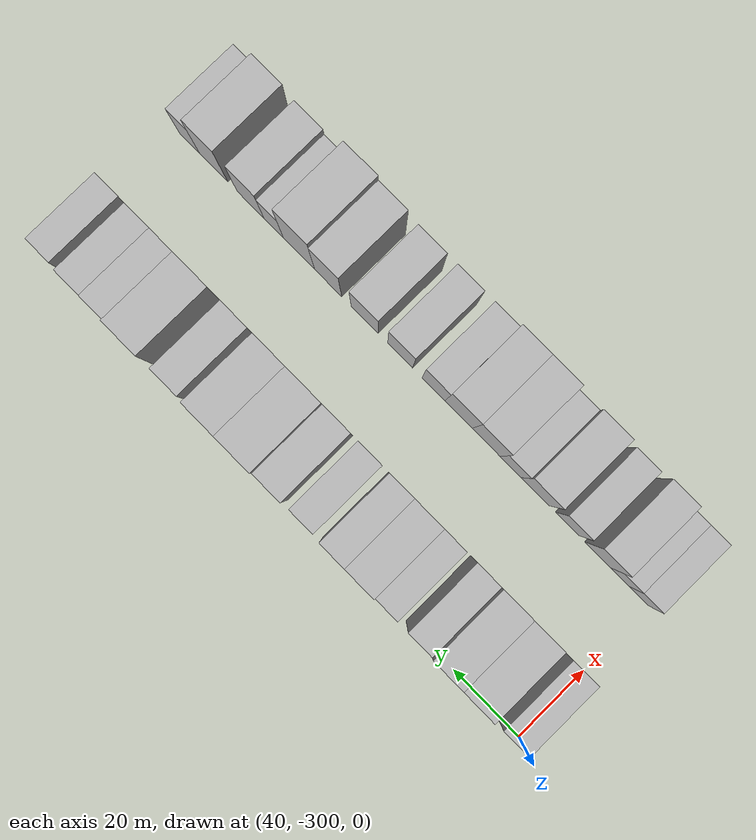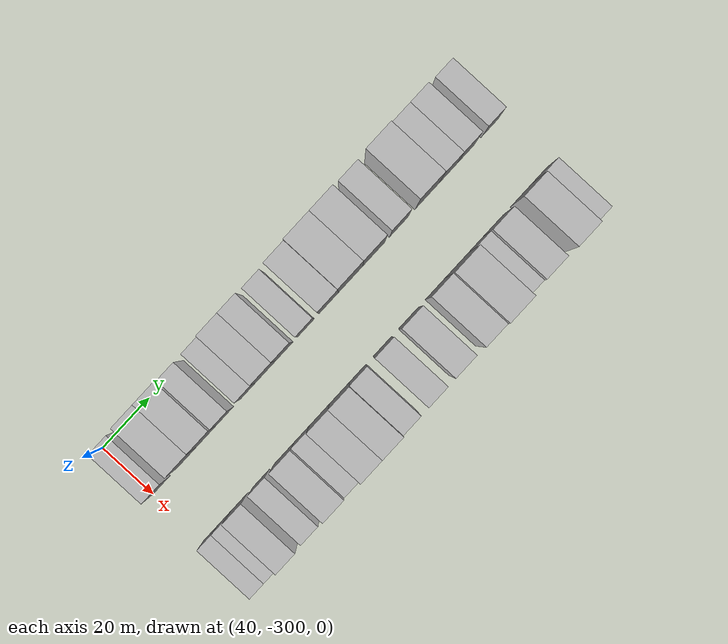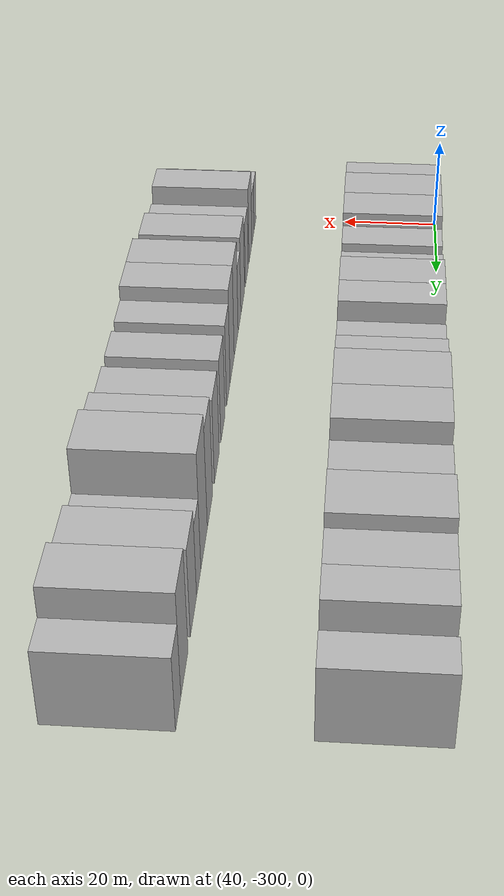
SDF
<sdf version="1.6">
 <world name="default">
  <model name="building_1">
   <static>1</static>
   <pose>50.0000 -296.3226 0 0.000000 0.000000 0.000000</pose>
   <link name="link">
    <pose>0 0 7.50 0 0 0</pose>
    <collision name="collision"><geometry><box><size>20.0000 7.3548 15.0000</size></box></geometry></collision>
    <visual name="visual">
     <cast_shadows>0</cast_shadows>
     <geometry><box><size>20.0000 7.3548 15.0000</size></box></geometry>
     <material>
      <script>
       <uri>model://HANNAS_wall/materials/scripts</uri>
       <uri>model://HANNAS_wall/materials/textures</uri>
       <name>vrc/HANNAS_wall</name>
      </script>
     </material>
    </visual>
   </link>
  </model>
  <model name="building_2">
   <static>1</static>
   <pose>50.0000 -285.2588 0 0.000000 0.000000 0.000000</pose>
   <link name="link">
    <pose>0 0 9.00 0 0 0</pose>
    <collision name="collision"><geometry><box><size>20.0000 8.7729 18.0000</size></box></geometry></collision>
    <visual name="visual">
     <cast_shadows>0</cast_shadows>
     <geometry><box><size>20.0000 8.7729 18.0000</size></box></geometry>
     <material>
      <script>
       <uri>model://HANNAS_wall/materials/scripts</uri>
       <uri>model://HANNAS_wall/materials/textures</uri>
       <name>vrc/HANNAS_wall</name>
      </script>
     </material>
    </visual>
   </link>
  </model>
  <model name="building_3">
   <static>1</static>
   <pose>50.0000 -276.5379 0 0.000000 0.000000 0.000000</pose>
   <link name="link">
    <pose>0 0 9.00 0 0 0</pose>
    <collision name="collision"><geometry><box><size>20.0000 8.6689 18.0000</size></box></geometry></collision>
    <visual name="visual">
     <cast_shadows>0</cast_shadows>
     <geometry><box><size>20.0000 8.6689 18.0000</size></box></geometry>
     <material>
      <script>
       <uri>model://HANNAS_wall/materials/scripts</uri>
       <uri>model://HANNAS_wall/materials/textures</uri>
       <name>vrc/HANNAS_wall</name>
      </script>
     </material>
    </visual>
   </link>
  </model>
  <model name="building_4">
   <static>1</static>
   <pose>50.0000 -268.7203 0 0.000000 0.000000 0.000000</pose>
   <link name="link">
    <pose>0 0 7.50 0 0 0</pose>
    <collision name="collision"><geometry><box><size>20.0000 6.9662 15.0000</size></box></geometry></collision>
    <visual name="visual">
     <cast_shadows>0</cast_shadows>
     <geometry><box><size>20.0000 6.9662 15.0000</size></box></geometry>
     <material>
      <script>
       <uri>model://HANNAS_wall/materials/scripts</uri>
       <uri>model://HANNAS_wall/materials/textures</uri>
       <name>vrc/HANNAS_wall</name>
      </script>
     </material>
    </visual>
   </link>
  </model>
  <model name="building_5">
   <static>1</static>
   <pose>50.0000 -258.8322 0 0.000000 0.000000 0.000000</pose>
   <link name="link">
    <pose>0 0 7.50 0 0 0</pose>
    <collision name="collision"><geometry><box><size>20.0000 6.8100 15.0000</size></box></geometry></collision>
    <visual name="visual">
     <cast_shadows>0</cast_shadows>
     <geometry><box><size>20.0000 6.8100 15.0000</size></box></geometry>
     <material>
      <script>
       <uri>model://HANNAS_wall/materials/scripts</uri>
       <uri>model://HANNAS_wall/materials/textures</uri>
       <name>vrc/HANNAS_wall</name>
      </script>
     </material>
    </visual>
   </link>
  </model>
  <model name="building_6">
   <static>1</static>
   <pose>50.0000 -251.1433 0 0.000000 0.000000 0.000000</pose>
   <link name="link">
    <pose>0 0 9.00 0 0 0</pose>
    <collision name="collision"><geometry><box><size>20.0000 8.5678 18.0000</size></box></geometry></collision>
    <visual name="visual">
     <cast_shadows>0</cast_shadows>
     <geometry><box><size>20.0000 8.5678 18.0000</size></box></geometry>
     <material>
      <script>
       <uri>model://HANNAS_wall/materials/scripts</uri>
       <uri>model://HANNAS_wall/materials/textures</uri>
       <name>vrc/HANNAS_wall</name>
      </script>
     </material>
    </visual>
   </link>
  </model>
  <model name="building_7">
   <static>1</static>
   <pose>50.0000 -243.2045 0 0.000000 0.000000 0.000000</pose>
   <link name="link">
    <pose>0 0 9.00 0 0 0</pose>
    <collision name="collision"><geometry><box><size>20.0000 7.3098 18.0000</size></box></geometry></collision>
    <visual name="visual">
     <cast_shadows>0</cast_shadows>
     <geometry><box><size>20.0000 7.3098 18.0000</size></box></geometry>
     <material>
      <script>
       <uri>model://HANNAS_wall/materials/scripts</uri>
       <uri>model://HANNAS_wall/materials/textures</uri>
       <name>vrc/HANNAS_wall</name>
      </script>
     </material>
    </visual>
   </link>
  </model>
  <model name="building_8">
   <static>1</static>
   <pose>50.0000 -233.9707 0 0.000000 0.000000 0.000000</pose>
   <link name="link">
    <pose>0 0 7.50 0 0 0</pose>
    <collision name="collision"><geometry><box><size>20.0000 7.1579 15.0000</size></box></geometry></collision>
    <visual name="visual">
     <cast_shadows>0</cast_shadows>
     <geometry><box><size>20.0000 7.1579 15.0000</size></box></geometry>
     <material>
      <script>
       <uri>model://HANNAS_wall/materials/scripts</uri>
       <uri>model://HANNAS_wall/materials/textures</uri>
       <name>vrc/HANNAS_wall</name>
      </script>
     </material>
    </visual>
   </link>
  </model>
  <model name="building_9">
   <static>1</static>
   <pose>50.0000 -224.2129 0 0.000000 0.000000 0.000000</pose>
   <link name="link">
    <pose>0 0 9.00 0 0 0</pose>
    <collision name="collision"><geometry><box><size>20.0000 8.3578 18.0000</size></box></geometry></collision>
    <visual name="visual">
     <cast_shadows>0</cast_shadows>
     <geometry><box><size>20.0000 8.3578 18.0000</size></box></geometry>
     <material>
      <script>
       <uri>model://HANNAS_wall/materials/scripts</uri>
       <uri>model://HANNAS_wall/materials/textures</uri>
       <name>vrc/HANNAS_wall</name>
      </script>
     </material>
    </visual>
   </link>
  </model>
  <model name="building_10">
   <static>1</static>
   <pose>50.0000 -214.8225 0 0.000000 0.000000 0.000000</pose>
   <link name="link">
    <pose>0 0 10.50 0 0 0</pose>
    <collision name="collision"><geometry><box><size>20.0000 10.4230 21.0000</size></box></geometry></collision>
    <visual name="visual">
     <cast_shadows>0</cast_shadows>
     <geometry><box><size>20.0000 10.4230 21.0000</size></box></geometry>
     <material>
      <script>
       <uri>model://HANNAS_wall/materials/scripts</uri>
       <uri>model://HANNAS_wall/materials/textures</uri>
       <name>vrc/HANNAS_wall</name>
      </script>
     </material>
    </visual>
   </link>
  </model>
  <model name="building_11">
   <static>1</static>
   <pose>50.0000 -204.8685 0 0.000000 0.000000 0.000000</pose>
   <link name="link">
    <pose>0 0 10.50 0 0 0</pose>
    <collision name="collision"><geometry><box><size>20.0000 9.4849 21.0000</size></box></geometry></collision>
    <visual name="visual">
     <cast_shadows>0</cast_shadows>
     <geometry><box><size>20.0000 9.4849 21.0000</size></box></geometry>
     <material>
      <script>
       <uri>model://HANNAS_wall/materials/scripts</uri>
       <uri>model://HANNAS_wall/materials/textures</uri>
       <name>vrc/HANNAS_wall</name>
      </script>
     </material>
    </visual>
   </link>
  </model>
  <model name="building_12">
   <static>1</static>
   <pose>50.0000 -194.1113 0 0.000000 0.000000 0.000000</pose>
   <link name="link">
    <pose>0 0 9.00 0 0 0</pose>
    <collision name="collision"><geometry><box><size>20.0000 8.0295 18.0000</size></box></geometry></collision>
    <visual name="visual">
     <cast_shadows>0</cast_shadows>
     <geometry><box><size>20.0000 8.0295 18.0000</size></box></geometry>
     <material>
      <script>
       <uri>model://HANNAS_wall/materials/scripts</uri>
       <uri>model://HANNAS_wall/materials/textures</uri>
       <name>vrc/HANNAS_wall</name>
      </script>
     </material>
    </visual>
   </link>
  </model>
  <model name="building_13">
   <static>1</static>
   <pose>50.0000 -181.9876 0 0.000000 0.000000 0.000000</pose>
   <link name="link">
    <pose>0 0 10.50 0 0 0</pose>
    <collision name="collision"><geometry><box><size>20.0000 10.2180 21.0000</size></box></geometry></collision>
    <visual name="visual">
     <cast_shadows>0</cast_shadows>
     <geometry><box><size>20.0000 10.2180 21.0000</size></box></geometry>
     <material>
      <script>
       <uri>model://HANNAS_wall/materials/scripts</uri>
       <uri>model://HANNAS_wall/materials/textures</uri>
       <name>vrc/HANNAS_wall</name>
      </script>
     </material>
    </visual>
   </link>
  </model>
  <model name="building_14">
   <static>1</static>
   <pose>50.0000 -172.9549 0 0.000000 0.000000 0.000000</pose>
   <link name="link">
    <pose>0 0 9.00 0 0 0</pose>
    <collision name="collision"><geometry><box><size>20.0000 7.8474 18.0000</size></box></geometry></collision>
    <visual name="visual">
     <cast_shadows>0</cast_shadows>
     <geometry><box><size>20.0000 7.8474 18.0000</size></box></geometry>
     <material>
      <script>
       <uri>model://HANNAS_wall/materials/scripts</uri>
       <uri>model://HANNAS_wall/materials/textures</uri>
       <name>vrc/HANNAS_wall</name>
      </script>
     </material>
    </visual>
   </link>
  </model>
  <model name="building_15">
   <static>1</static>
   <pose>50.0000 -165.3196 0 0.000000 0.000000 0.000000</pose>
   <link name="link">
    <pose>0 0 9.00 0 0 0</pose>
    <collision name="collision"><geometry><box><size>20.0000 7.4234 18.0000</size></box></geometry></collision>
    <visual name="visual">
     <cast_shadows>0</cast_shadows>
     <geometry><box><size>20.0000 7.4234 18.0000</size></box></geometry>
     <material>
      <script>
       <uri>model://HANNAS_wall/materials/scripts</uri>
       <uri>model://HANNAS_wall/materials/textures</uri>
       <name>vrc/HANNAS_wall</name>
      </script>
     </material>
    </visual>
   </link>
  </model>
  <model name="building_16">
   <static>1</static>
   <pose>50.0000 -155.0057 0 0.000000 0.000000 0.000000</pose>
   <link name="link">
    <pose>0 0 7.50 0 0 0</pose>
    <collision name="collision"><geometry><box><size>20.0000 7.2043 15.0000</size></box></geometry></collision>
    <visual name="visual">
     <cast_shadows>0</cast_shadows>
     <geometry><box><size>20.0000 7.2043 15.0000</size></box></geometry>
     <material>
      <script>
       <uri>model://HANNAS_wall/materials/scripts</uri>
       <uri>model://HANNAS_wall/materials/textures</uri>
       <name>vrc/HANNAS_wall</name>
      </script>
     </material>
    </visual>
   </link>
  </model>
  <model name="building_66">
   <static>1</static>
   <pose>90.0000 -297.0856 0 0.000000 0.000000 0.000000</pose>
   <link name="link">
    <pose>0 0 6.00 0 0 0</pose>
    <collision name="collision"><geometry><box><size>20.0000 5.8288 12.0000</size></box></geometry></collision>
    <visual name="visual">
     <cast_shadows>0</cast_shadows>
     <geometry><box><size>20.0000 5.8288 12.0000</size></box></geometry>
     <material>
      <script>
       <uri>model://HANNAS_wall/materials/scripts</uri>
       <uri>model://HANNAS_wall/materials/textures</uri>
       <name>vrc/HANNAS_wall</name>
      </script>
     </material>
    </visual>
   </link>
  </model>
  <model name="building_67">
   <static>1</static>
   <pose>90.0000 -291.3584 0 0.000000 0.000000 0.000000</pose>
   <link name="link">
    <pose>0 0 6.00 0 0 0</pose>
    <collision name="collision"><geometry><box><size>20.0000 5.6254 12.0000</size></box></geometry></collision>
    <visual name="visual">
     <cast_shadows>0</cast_shadows>
     <geometry><box><size>20.0000 5.6254 12.0000</size></box></geometry>
     <material>
      <script>
       <uri>model://HANNAS_wall/materials/scripts</uri>
       <uri>model://HANNAS_wall/materials/textures</uri>
       <name>vrc/HANNAS_wall</name>
      </script>
     </material>
    </visual>
   </link>
  </model>
  <model name="building_68">
   <static>1</static>
   <pose>90.0000 -284.6246 0 0.000000 0.000000 0.000000</pose>
   <link name="link">
    <pose>0 0 9.00 0 0 0</pose>
    <collision name="collision"><geometry><box><size>20.0000 7.8423 18.0000</size></box></geometry></collision>
    <visual name="visual">
     <cast_shadows>0</cast_shadows>
     <geometry><box><size>20.0000 7.8423 18.0000</size></box></geometry>
     <material>
      <script>
       <uri>model://HANNAS_wall/materials/scripts</uri>
       <uri>model://HANNAS_wall/materials/textures</uri>
       <name>vrc/HANNAS_wall</name>
      </script>
     </material>
    </visual>
   </link>
  </model>
  <model name="building_69">
   <static>1</static>
   <pose>90.0000 -275.1547 0 0.000000 0.000000 0.000000</pose>
   <link name="link">
    <pose>0 0 7.50 0 0 0</pose>
    <collision name="collision"><geometry><box><size>20.0000 7.0974 15.0000</size></box></geometry></collision>
    <visual name="visual">
     <cast_shadows>0</cast_shadows>
     <geometry><box><size>20.0000 7.0974 15.0000</size></box></geometry>
     <material>
      <script>
       <uri>model://HANNAS_wall/materials/scripts</uri>
       <uri>model://HANNAS_wall/materials/textures</uri>
       <name>vrc/HANNAS_wall</name>
      </script>
     </material>
    </visual>
   </link>
  </model>
  <model name="building_70">
   <static>1</static>
   <pose>90.0000 -265.2765 0 0.000000 0.000000 0.000000</pose>
   <link name="link">
    <pose>0 0 9.00 0 0 0</pose>
    <collision name="collision"><geometry><box><size>20.0000 8.6590 18.0000</size></box></geometry></collision>
    <visual name="visual">
     <cast_shadows>0</cast_shadows>
     <geometry><box><size>20.0000 8.6590 18.0000</size></box></geometry>
     <material>
      <script>
       <uri>model://HANNAS_wall/materials/scripts</uri>
       <uri>model://HANNAS_wall/materials/textures</uri>
       <name>vrc/HANNAS_wall</name>
      </script>
     </material>
    </visual>
   </link>
  </model>
  <model name="building_71">
   <static>1</static>
   <pose>90.0000 -257.6493 0 0.000000 0.000000 0.000000</pose>
   <link name="link">
    <pose>0 0 7.50 0 0 0</pose>
    <collision name="collision"><geometry><box><size>20.0000 6.5954 15.0000</size></box></geometry></collision>
    <visual name="visual">
     <cast_shadows>0</cast_shadows>
     <geometry><box><size>20.0000 6.5954 15.0000</size></box></geometry>
     <material>
      <script>
       <uri>model://HANNAS_wall/materials/scripts</uri>
       <uri>model://HANNAS_wall/materials/textures</uri>
       <name>vrc/HANNAS_wall</name>
      </script>
     </material>
    </visual>
   </link>
  </model>
  <model name="building_72">
   <static>1</static>
   <pose>90.0000 -250.0332 0 0.000000 0.000000 0.000000</pose>
   <link name="link">
    <pose>0 0 10.50 0 0 0</pose>
    <collision name="collision"><geometry><box><size>20.0000 8.6369 21.0000</size></box></geometry></collision>
    <visual name="visual">
     <cast_shadows>0</cast_shadows>
     <geometry><box><size>20.0000 8.6369 21.0000</size></box></geometry>
     <material>
      <script>
       <uri>model://HANNAS_wall/materials/scripts</uri>
       <uri>model://HANNAS_wall/materials/textures</uri>
       <name>vrc/HANNAS_wall</name>
      </script>
     </material>
    </visual>
   </link>
  </model>
  <model name="building_73">
   <static>1</static>
   <pose>90.0000 -241.4345 0 0.000000 0.000000 0.000000</pose>
   <link name="link">
    <pose>0 0 10.50 0 0 0</pose>
    <collision name="collision"><geometry><box><size>20.0000 8.5606 21.0000</size></box></geometry></collision>
    <visual name="visual">
     <cast_shadows>0</cast_shadows>
     <geometry><box><size>20.0000 8.5606 21.0000</size></box></geometry>
     <material>
      <script>
       <uri>model://HANNAS_wall/materials/scripts</uri>
       <uri>model://HANNAS_wall/materials/textures</uri>
       <name>vrc/HANNAS_wall</name>
      </script>
     </material>
    </visual>
   </link>
  </model>
  <model name="building_74">
   <static>1</static>
   <pose>90.0000 -233.5163 0 0.000000 0.000000 0.000000</pose>
   <link name="link">
    <pose>0 0 9.00 0 0 0</pose>
    <collision name="collision"><geometry><box><size>20.0000 7.2758 18.0000</size></box></geometry></collision>
    <visual name="visual">
     <cast_shadows>0</cast_shadows>
     <geometry><box><size>20.0000 7.2758 18.0000</size></box></geometry>
     <material>
      <script>
       <uri>model://HANNAS_wall/materials/scripts</uri>
       <uri>model://HANNAS_wall/materials/textures</uri>
       <name>vrc/HANNAS_wall</name>
      </script>
     </material>
    </visual>
   </link>
  </model>
  <model name="building_75">
   <static>1</static>
   <pose>90.0000 -222.9421 0 0.000000 0.000000 0.000000</pose>
   <link name="link">
    <pose>0 0 9.00 0 0 0</pose>
    <collision name="collision"><geometry><box><size>20.0000 7.8727 18.0000</size></box></geometry></collision>
    <visual name="visual">
     <cast_shadows>0</cast_shadows>
     <geometry><box><size>20.0000 7.8727 18.0000</size></box></geometry>
     <material>
      <script>
       <uri>model://HANNAS_wall/materials/scripts</uri>
       <uri>model://HANNAS_wall/materials/textures</uri>
       <name>vrc/HANNAS_wall</name>
      </script>
     </material>
    </visual>
   </link>
  </model>
  <model name="building_76">
   <static>1</static>
   <pose>90.0000 -211.7024 0 0.000000 0.000000 0.000000</pose>
   <link name="link">
    <pose>0 0 9.00 0 0 0</pose>
    <collision name="collision"><geometry><box><size>20.0000 8.6066 18.0000</size></box></geometry></collision>
    <visual name="visual">
     <cast_shadows>0</cast_shadows>
     <geometry><box><size>20.0000 8.6066 18.0000</size></box></geometry>
     <material>
      <script>
       <uri>model://HANNAS_wall/materials/scripts</uri>
       <uri>model://HANNAS_wall/materials/textures</uri>
       <name>vrc/HANNAS_wall</name>
      </script>
     </material>
    </visual>
   </link>
  </model>
  <model name="building_77">
   <static>1</static>
   <pose>90.0000 -200.0580 0 0.000000 0.000000 0.000000</pose>
   <link name="link">
    <pose>0 0 10.50 0 0 0</pose>
    <collision name="collision"><geometry><box><size>20.0000 8.6824 21.0000</size></box></geometry></collision>
    <visual name="visual">
     <cast_shadows>0</cast_shadows>
     <geometry><box><size>20.0000 8.6824 21.0000</size></box></geometry>
     <material>
      <script>
       <uri>model://HANNAS_wall/materials/scripts</uri>
       <uri>model://HANNAS_wall/materials/textures</uri>
       <name>vrc/HANNAS_wall</name>
      </script>
     </material>
    </visual>
   </link>
  </model>
  <model name="building_78">
   <static>1</static>
   <pose>90.0000 -190.6922 0 0.000000 0.000000 0.000000</pose>
   <link name="link">
    <pose>0 0 12.00 0 0 0</pose>
    <collision name="collision"><geometry><box><size>20.0000 10.0491 24.0000</size></box></geometry></collision>
    <visual name="visual">
     <cast_shadows>0</cast_shadows>
     <geometry><box><size>20.0000 10.0491 24.0000</size></box></geometry>
     <material>
      <script>
       <uri>model://HANNAS_wall/materials/scripts</uri>
       <uri>model://HANNAS_wall/materials/textures</uri>
       <name>vrc/HANNAS_wall</name>
      </script>
     </material>
    </visual>
   </link>
  </model>
  <model name="building_79">
   <static>1</static>
   <pose>90.0000 -182.5244 0 0.000000 0.000000 0.000000</pose>
   <link name="link">
    <pose>0 0 7.50 0 0 0</pose>
    <collision name="collision"><geometry><box><size>20.0000 6.2866 15.0000</size></box></geometry></collision>
    <visual name="visual">
     <cast_shadows>0</cast_shadows>
     <geometry><box><size>20.0000 6.2866 15.0000</size></box></geometry>
     <material>
      <script>
       <uri>model://HANNAS_wall/materials/scripts</uri>
       <uri>model://HANNAS_wall/materials/textures</uri>
       <name>vrc/HANNAS_wall</name>
      </script>
     </material>
    </visual>
   </link>
  </model>
  <model name="building_80">
   <static>1</static>
   <pose>90.0000 -175.0175 0 0.000000 0.000000 0.000000</pose>
   <link name="link">
    <pose>0 0 9.00 0 0 0</pose>
    <collision name="collision"><geometry><box><size>20.0000 8.7271 18.0000</size></box></geometry></collision>
    <visual name="visual">
     <cast_shadows>0</cast_shadows>
     <geometry><box><size>20.0000 8.7271 18.0000</size></box></geometry>
     <material>
      <script>
       <uri>model://HANNAS_wall/materials/scripts</uri>
       <uri>model://HANNAS_wall/materials/textures</uri>
       <name>vrc/HANNAS_wall</name>
      </script>
     </material>
    </visual>
   </link>
  </model>
  <model name="building_81">
   <static>1</static>
   <pose>90.0000 -163.0383 0 0.000000 0.000000 0.000000</pose>
   <link name="link">
    <pose>0 0 10.50 0 0 0</pose>
    <collision name="collision"><geometry><box><size>20.0000 9.2314 21.0000</size></box></geometry></collision>
    <visual name="visual">
     <cast_shadows>0</cast_shadows>
     <geometry><box><size>20.0000 9.2314 21.0000</size></box></geometry>
     <material>
      <script>
       <uri>model://HANNAS_wall/materials/scripts</uri>
       <uri>model://HANNAS_wall/materials/textures</uri>
       <name>vrc/HANNAS_wall</name>
      </script>
     </material>
    </visual>
   </link>
  </model>
  <model name="building_82">
   <static>1</static>
   <pose>90.0000 -155.1365 0 0.000000 0.000000 0.000000</pose>
   <link name="link">
    <pose>0 0 7.50 0 0 0</pose>
    <collision name="collision"><geometry><box><size>20.0000 6.5722 15.0000</size></box></geometry></collision>
    <visual name="visual">
     <cast_shadows>0</cast_shadows>
     <geometry><box><size>20.0000 6.5722 15.0000</size></box></geometry>
     <material>
      <script>
       <uri>model://HANNAS_wall/materials/scripts</uri>
       <uri>model://HANNAS_wall/materials/textures</uri>
       <name>vrc/HANNAS_wall</name>
      </script>
     </material>
    </visual>
   </link>
  </model>
 </world>
</sdf>
